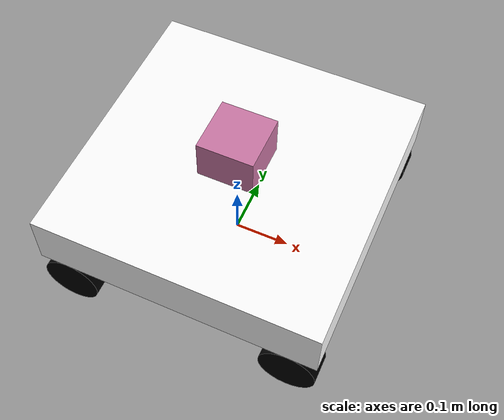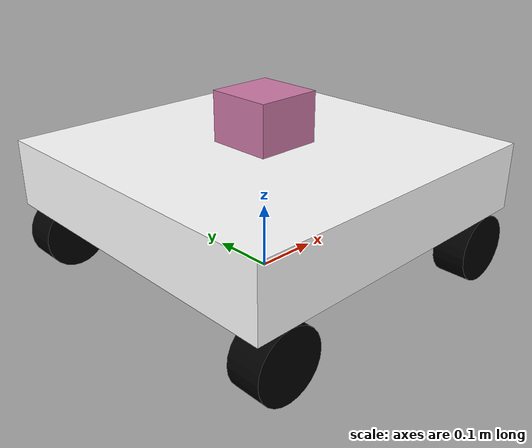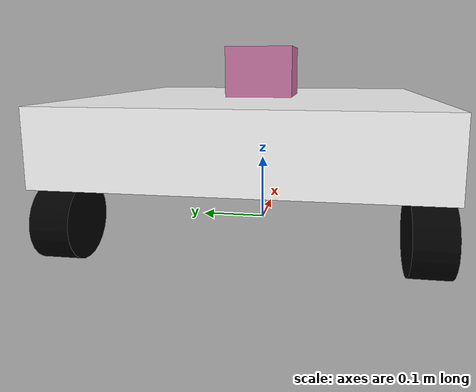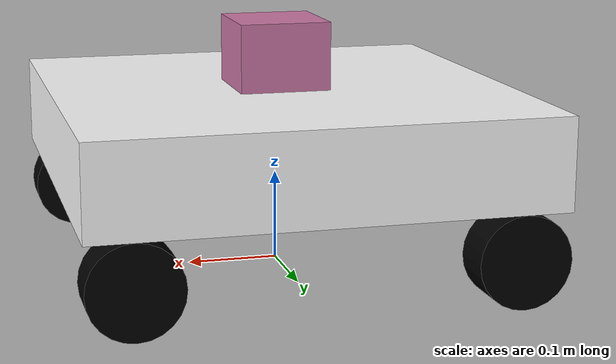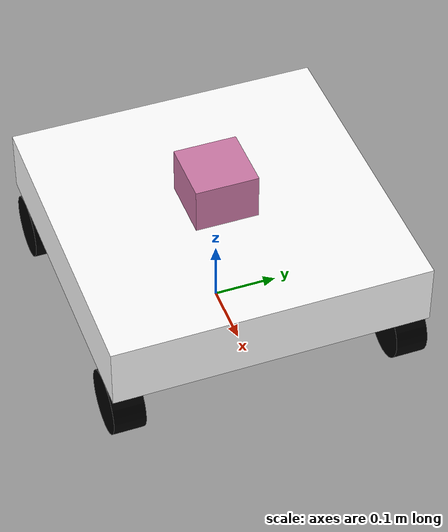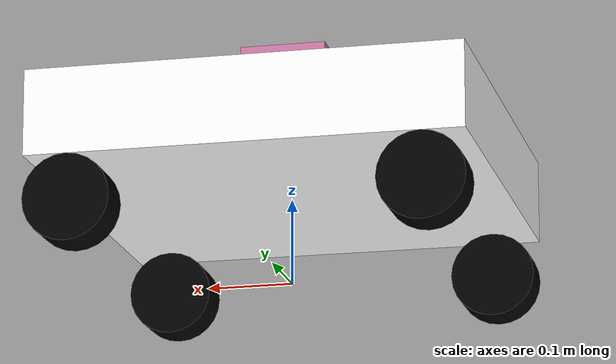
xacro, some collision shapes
<?xml version="1.0"?>
<robot name="muvu" xmlns:xacro="http://ros.org/wiki/xacro">

  <!-- DEFINING GENERIC PROPERTIES THAT ARE USED IN THE XACRO FILE -->

  <!-- along x axis -->
  <xacro:property name="base_length" value="0.5"/>
  <!-- along y axis -->
  <xacro:property name="base_width" value="0.5"/>
  <!-- along z axis -->
  <xacro:property name="base_height" value="0.1"/>
  <xacro:property name="base_mass" value="50"/>
  <xacro:property name="wheel_dia" value="0.1"/>
  <xacro:property name="wheel_height" value="0.05"/>
  <xacro:property name="wheel_mass" value="0.5"/>

  <!-- COLOURS FOR MATERIAL -->
  <material name="white">
    <color rgba="1 1 1 1"/>
  </material>

  <material name="black">
    <color rgba ="0 0 0 1"/>
  </material>

  <material name="green">
    <color rgba="0 1 0 1"/>
  </material>

  <!-- MACROS FOR INERTIAL PROPERTIES -->
  <xacro:macro name="base_inertial">
    <inertial>
      <mass value="${base_mass}" />
      <inertia ixx="${(1/12)*base_mass*((base_width*base_width)+(base_height*base_height))}"
        ixy="0.0"
        ixz="0.0"
        iyy="${(1/12)*base_mass*((base_height*base_height)+(base_length*base_length))}"
        iyz="0.0"
        izz="${(1/12)*base_mass*((base_width*base_width)+(base_length*base_length))}" />
    </inertial>
  </xacro:macro>

  <xacro:macro name="wheel_inertial">
    <inertial>
      <mass value="${wheel_mass}" />
      <inertia ixx="1.0" ixy="0.0" ixz="0.0" iyy="1.0" iyz="0.0" izz="1.0" />
    </inertial>
  </xacro:macro>

  <!-- MACRO FOR GENERIC WHEEL. SUPPLY PARAMS TO PLACE THEM, JOINT INCLUDEDE IN MACRO -->
  <xacro:macro name="wheel" params="left_right front_back relx rely">
    <link name="${left_right}_${front_back}_wheel">
      <visual>
        <origin xyz="0 0 0" rpy="${pi/2} 0 0"/>
        <geometry>
          <cylinder radius="${wheel_dia/2}" length="${wheel_height}"/>
        </geometry>
        <material name="black"/>
      </visual>
      <collision>
        <origin xyz="0 0 0" rpy="${pi/2} 0 0"/>
        <geometry>
          <cylinder radius="${wheel_dia/2}" length="${wheel_height}"/>
        </geometry>
      </collision>
      <xacro:wheel_inertial/>
    </link>

    <joint name="${left_right}_${front_back}_wheel_to_base_link" type="continuous">
      <origin xyz="${relx*((base_length/2)-wheel_dia/2)} ${rely*((base_width/2-wheel_height/2))} ${wheel_dia/2}" rpy="0 0 0"/>
      <axis xyz="0 1 0" rpy="0 0 0"/>
      <parent link="base_link"/>
      <child link="${left_right}_${front_back}_wheel"/>
    </joint>
  </xacro:macro>

  <!-- DUMMY ROOT LINK SO THAT BASE LINK CAN BE GIVEN SOME MASS -->
  <link name="root_link"/>

  <!-- BASE LINK. MAIN BOX TO WHICH WHEEL AND EVERYTHING ELSE IS TO BE ATTACHED -->
  <link name="base_link">
    <visual>
      <origin xyz="0 0 ${wheel_dia + base_height/2}" rpy="0 0 0"/>
      <geometry>
        <box size="${base_length} ${base_width} ${base_height}"/>
      </geometry>
      <material name="white"/>
    </visual>
    <collision name="base_link_collision">
      <origin xyz="0 0 ${wheel_dia + base_height/2}" rpy="0 0 0"/>
      <geometry>
        <box size="${base_length} ${base_width} ${base_height}"/>
      </geometry>
    </collision>
    <xacro:base_inertial/>
  </link>

  <!-- CONNECT BASE LINK TO ROOT LINK -->
  <joint name="base_to_root_joint" type="fixed">
    <parent link="root_link"/>
    <child link="base_link"/>
  </joint>

  <!-- CREATING AN INSTANCE OF EACH WHEEL -->
  <xacro:wheel left_right="left" front_back="front" relx="1" rely="1"/>
  <xacro:wheel left_right="left" front_back="back" relx="-1" rely="1"/>
  <xacro:wheel left_right="right" front_back="back" relx="-1" rely="-1"/>
  <xacro:wheel left_right="right" front_back="front" relx="1" rely="-1"/>

  <!--_______________________ Hokuyo Laser _______________________-->
  <link name="hokuyo_link">
    <collision>
      <origin xyz="0 0 0" rpy="0 0 0"/>
      <geometry>
    <box size="0.1 0.1 0.1"/>
      </geometry>
    </collision>

    <visual>
      <origin xyz="0 0 0" rpy="0 0 0"/>
      <geometry>
        <mesh filename="package://muvu_description/models/hokuyo.dae"/>
      </geometry>
    </visual>

    <inertial>
      <mass value="1e-5" />
      <origin xyz="0 0 0" rpy="0 0 0"/>
      <inertia ixx="1e-6" ixy="0" ixz="0" iyy="1e-6" iyz="0" izz="1e-6" />
    </inertial>
  </link>

  <!--_______________________ Hokuyo Joint _______________________-->
  <joint name="hokuyo_joint" type="fixed">
    <axis xyz="0 1 0" />
    <origin xyz="0 0 ${base_height+wheel_dia+0.025}" rpy="0 0 0"/>
    <parent link="base_link"/>
    <child link="hokuyo_link"/>
  </joint>

  <!-- hokuyo plugin-->
  <gazebo reference="hokuyo_link">
    <sensor type="ray" name="head_hokuyo_sensor">
      <pose>0 0 0 0 0 0</pose>
      <visualize>true</visualize>
      <update_rate>40</update_rate>
      <ray>
        <scan>
          <horizontal>
            <samples>360</samples>
            <resolution>1</resolution>
            <min_angle>-3.141592653589793238</min_angle>
            <max_angle>3.141592653589793238</max_angle>
          </horizontal>
        </scan>
        <range>
          <min>0.1</min>
          <max>30.0</max>
          <resolution>0.01</resolution>
        </range>
        <noise>
          <type>gaussian</type>
          <mean>0.0</mean>
          <stddev>0.01</stddev>
        </noise>
      </ray>
      <plugin name="gazebo_ros_head_hokuyo_controller" filename="libgazebo_ros_laser.so">
        <topicName>/muvu/laser/scan</topicName>
        <frameName>base_link</frameName>
      </plugin>
    </sensor>
  </gazebo>

  <!-- SKID STEER PLUGIN -->
  <gazebo>
    <plugin name="skid_steer_drive_controller" filename="libgazebo_ros_skid_steer_drive.so">
      <updateRate>100.0</updateRate>
      <robotNamespace>/muvu</robotNamespace>
      <leftFrontJoint>left_front_wheel_to_base_link</leftFrontJoint>
      <rightFrontJoint>right_front_wheel_to_base_link</rightFrontJoint>
      <leftRearJoint>left_back_wheel_to_base_link</leftRearJoint>
      <rightRearJoint>right_back_wheel_to_base_link</rightRearJoint>
      <wheelSeparation>0.5</wheelSeparation>
      <wheelDiameter>0.1</wheelDiameter>
      <robotBaseFrame>base_link</robotBaseFrame>
      <torque>5</torque>
      <commandTopic>cmd_vel</commandTopic>
      <broadcastTF>false</broadcastTF>
    </plugin>
  </gazebo>

  <!-- JOINT STATE PUBLISHER -->
  <gazebo>
    <plugin name="joint_state_publisher" filename="libgazebo_ros_joint_state_publisher.so">
      <jointName>left_front_wheel_to_base_link, left_back_wheel_to_base_link,
      right_front_wheel_to_base_link, right_back_wheel_to_base_link</jointName>
    </plugin>
  </gazebo>

</robot>
